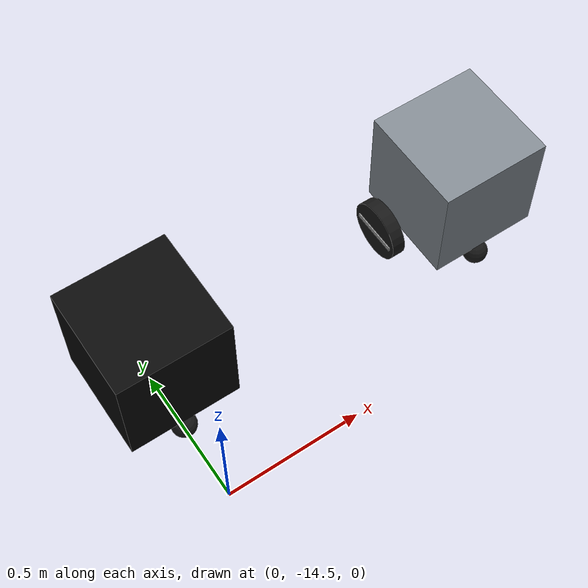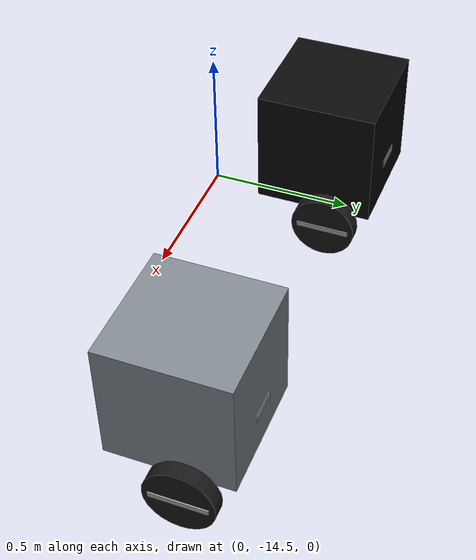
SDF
<sdf version="1.9">
 <world name="factory">
  <model name="aisle_robot">
   <static>false</static>
   <allow_auto_disable>false</allow_auto_disable>
   <link name="chassis">
    <pose>-0.06 0 0.33 0 0 0</pose>
    <inertial>
     <pose>-0.03 0 -0.12 0 0 0</pose>
     <mass>7</mass>
     <inertia><ixx>0.1866666667</ixx><iyy>0.1866666667</iyy><izz>0.1866666667</izz></inertia>
    </inertial>
    <visual name="black_cube">
     <geometry><box><size>0.40 0.40 0.40</size></box></geometry>
     <material>
      <ambient>0.025 0.025 0.025 1</ambient>
      <diffuse>0.035 0.035 0.035 1</diffuse>
      <specular>0.1 0.1 0.1 1</specular>
     </material>
    </visual>
    <visual name="front_marker">
     <pose>0.201 0 -0.07 0 0 0</pose>
     <geometry><box><size>0.003 0.10 0.025</size></box></geometry>
     <material><ambient>0.6 0.6 0.6 1</ambient><diffuse>0.6 0.6 0.6 1</diffuse></material>
    </visual>
    <gravity>false</gravity>
    <visual name="support_ball_visual">
     <geometry><sphere><radius>0.045</radius></sphere></geometry>
     <material><ambient>0.09 0.09 0.09 1</ambient><diffuse>0.09 0.09 0.09 1</diffuse></material>
     <pose>-0.17 0.0 -0.28500000000000003 0 0 0</pose>
    </visual>
   </link>
   <plugin filename="gz-sim-pose-publisher-system" name="gz::sim::systems::PosePublisher">
    <publish_link_pose>false</publish_link_pose>
    <publish_visual_pose>false</publish_visual_pose>
    <publish_collision_pose>false</publish_collision_pose>
    <publish_sensor_pose>false</publish_sensor_pose>
    <publish_model_pose>true</publish_model_pose>
    <publish_nested_model_pose>true</publish_nested_model_pose>
    <static_publisher>false</static_publisher>
    <use_pose_vector_msg>true</use_pose_vector_msg>
    <update_frequency>100</update_frequency>
   </plugin>
   <pose>0.0 -14.0 0.005 0 0 1.5707963267948966</pose>
  </model>
  <model name="aisle_robot_right_wheel">
   <static>false</static>
   <allow_auto_disable>false</allow_auto_disable>
   <link name="right_wheel">
    <inertial>
     <mass>0.25</mass>
     <inertia><ixx>0.000808333333</ixx><iyy>0.0015125</iyy><izz>0.000808333333</izz></inertia>
    </inertial>
    <visual name="tire">
     <pose>0 0 0 1.57079632679 0 0</pose>
     <geometry><cylinder><radius>0.11</radius><length>0.05</length></cylinder></geometry>
     <material><ambient>0.09 0.09 0.09 1</ambient><diffuse>0.09 0.09 0.09 1</diffuse></material>
    </visual>
    <visual name="rotation_spoke">
     <pose>0 -0.027 0 0 0 0</pose>
     <geometry><box><size>0.18 0.005 0.015</size></box></geometry>
     <material><ambient>0.65 0.65 0.65 1</ambient><diffuse>0.65 0.65 0.65 1</diffuse></material>
    </visual>
    <gravity>false</gravity>
   </link>
   <pose>0.25 -14.0 0.115 0 0 1.5707963267948966</pose>
  </model>
  <model name="executor_robot">
   <static>false</static>
   <allow_auto_disable>false</allow_auto_disable>
   <link name="chassis">
    <pose>-0.06 0 0.33 0 0 0</pose>
    <inertial>
     <pose>-0.03 0 -0.12 0 0 0</pose>
     <mass>7</mass>
     <inertia><ixx>0.1866666667</ixx><iyy>0.1866666667</iyy><izz>0.1866666667</izz></inertia>
    </inertial>
    <visual name="gray_cube">
     <geometry><box><size>0.40 0.40 0.40</size></box></geometry>
     <material>
      <ambient>0.5 0.53 0.56 1.0</ambient>
      <diffuse>0.5 0.53 0.56 1.0</diffuse>
      <specular>0.1 0.1 0.1 1</specular>
     </material>
    </visual>
    <visual name="front_marker">
     <pose>0.201 0 -0.07 0 0 0</pose>
     <geometry><box><size>0.003 0.10 0.025</size></box></geometry>
     <material><ambient>0.6 0.6 0.6 1</ambient><diffuse>0.6 0.6 0.6 1</diffuse></material>
    </visual>
    <gravity>false</gravity>
    <visual name="support_ball_visual">
     <geometry><sphere><radius>0.045</radius></sphere></geometry>
     <material><ambient>0.09 0.09 0.09 1</ambient><diffuse>0.09 0.09 0.09 1</diffuse></material>
     <pose>-0.17 0.0 -0.28500000000000003 0 0 0</pose>
    </visual>
   </link>
   <plugin filename="gz-sim-pose-publisher-system" name="gz::sim::systems::PosePublisher">
    <publish_link_pose>false</publish_link_pose>
    <publish_visual_pose>false</publish_visual_pose>
    <publish_collision_pose>false</publish_collision_pose>
    <publish_sensor_pose>false</publish_sensor_pose>
    <publish_model_pose>true</publish_model_pose>
    <publish_nested_model_pose>true</publish_nested_model_pose>
    <static_publisher>false</static_publisher>
    <use_pose_vector_msg>true</use_pose_vector_msg>
    <update_frequency>100</update_frequency>
   </plugin>
   <pose>1.2 -14.0 0.005 0 0 1.5707963267948966</pose>
  </model>
  <model name="executor_robot_left_wheel">
   <static>false</static>
   <allow_auto_disable>false</allow_auto_disable>
   <link name="left_wheel">
    <inertial>
     <mass>0.25</mass>
     <inertia><ixx>0.000808333333</ixx><iyy>0.0015125</iyy><izz>0.000808333333</izz></inertia>
    </inertial>
    <visual name="tire">
     <pose>0 0 0 1.57079632679 0 0</pose>
     <geometry><cylinder><radius>0.11</radius><length>0.05</length></cylinder></geometry>
     <material><ambient>0.09 0.09 0.09 1</ambient><diffuse>0.09 0.09 0.09 1</diffuse></material>
    </visual>
    <visual name="rotation_spoke">
     <pose>0 0.027 0 0 0 0</pose>
     <geometry><box><size>0.18 0.005 0.015</size></box></geometry>
     <material><ambient>0.65 0.65 0.65 1</ambient><diffuse>0.65 0.65 0.65 1</diffuse></material>
    </visual>
    <gravity>false</gravity>
   </link>
   <pose>0.95 -14.0 0.115 0 0 1.5707963267948966</pose>
  </model>
  <model name="executor_robot_right_wheel">
   <static>false</static>
   <allow_auto_disable>false</allow_auto_disable>
   <link name="right_wheel">
    <inertial>
     <mass>0.25</mass>
     <inertia><ixx>0.000808333333</ixx><iyy>0.0015125</iyy><izz>0.000808333333</izz></inertia>
    </inertial>
    <visual name="tire">
     <pose>0 0 0 1.57079632679 0 0</pose>
     <geometry><cylinder><radius>0.11</radius><length>0.05</length></cylinder></geometry>
     <material><ambient>0.09 0.09 0.09 1</ambient><diffuse>0.09 0.09 0.09 1</diffuse></material>
    </visual>
    <visual name="rotation_spoke">
     <pose>0 -0.027 0 0 0 0</pose>
     <geometry><box><size>0.18 0.005 0.015</size></box></geometry>
     <material><ambient>0.65 0.65 0.65 1</ambient><diffuse>0.65 0.65 0.65 1</diffuse></material>
    </visual>
    <gravity>false</gravity>
   </link>
   <pose>1.45 -14.0 0.115 0 0 1.5707963267948966</pose>
  </model>
 </world>
</sdf>
